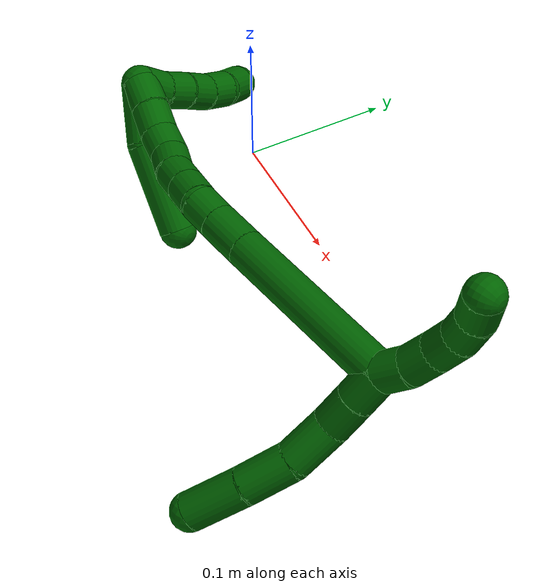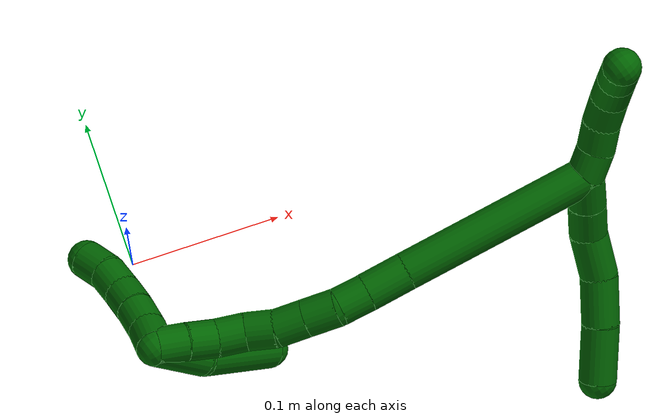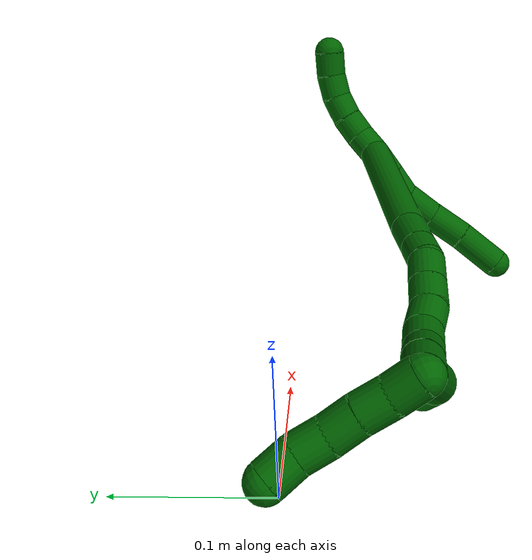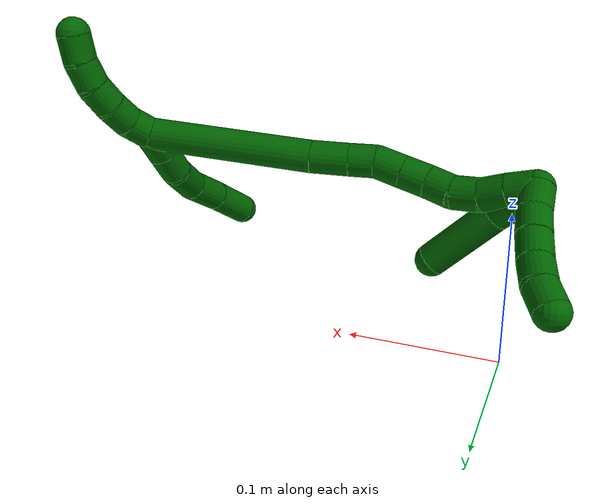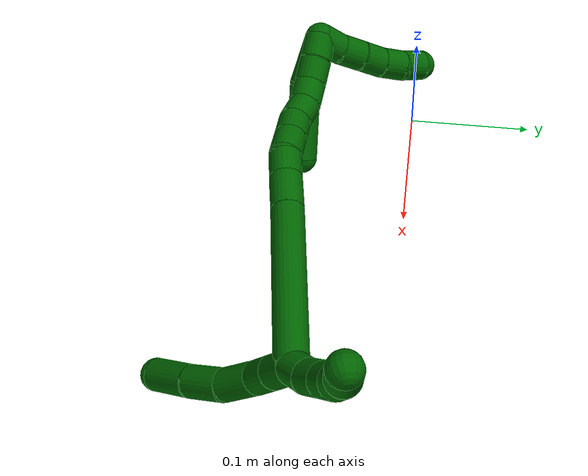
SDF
<sdf version="1.7">
 <world name="default">
  <model name="6">
   <static>0</static>
   <link name="6">
    <collision name="collision-cylinder-e_1_2_8">
     <pose>0.010128 0.003137 -0.004046 -2.48201 1.10277 -2.12586</pose>
     <geometry><cylinder><radius>0.0125</radius><length>0.022696</length></cylinder></geometry>
     <surface>
      <friction><ode><mu>1.16</mu><mu2>1.16</mu2><slip1>0</slip1><slip2>0</slip2></ode></friction>
      <contact><ode><kp>1e+06</kp><kd>1</kd><max_vel>0</max_vel><min_depth>0.001</min_depth></ode></contact>
     </surface>
    </collision>
    <visual name="visual-cylinder-e_1_2_8">
     <pose>0.010128 0.003137 -0.004046 -2.48201 1.10277 -2.12586</pose>
     <geometry><cylinder><radius>0.0125</radius><length>0.022696</length></cylinder></geometry>
     <material><ambient>0 0.392157 0.003922 1</ambient></material>
    </visual>
    <collision name="collision-cylinder-e_2_8_9">
     <pose>0.030873 0.009774 -0.012559 -2.47704 1.07993 -2.09685</pose>
     <geometry><cylinder><radius>0.0125</radius><length>0.024078</length></cylinder></geometry>
     <surface>
      <friction><ode><mu>1.16</mu><mu2>1.16</mu2><slip1>0</slip1><slip2>0</slip2></ode></friction>
      <contact><ode><kp>1e+06</kp><kd>1</kd><max_vel>0</max_vel><min_depth>0.001</min_depth></ode></contact>
     </surface>
    </collision>
    <visual name="visual-cylinder-e_2_8_9">
     <pose>0.030873 0.009774 -0.012559 -2.47704 1.07993 -2.09685</pose>
     <geometry><cylinder><radius>0.0125</radius><length>0.024078</length></cylinder></geometry>
     <material><ambient>0 0.392157 0.003922 1</ambient></material>
    </visual>
    <collision name="collision-cylinder-e_3_9_10">
     <pose>0.056366 0.013164 -0.021844 3.11879 1.25747 3.11024</pose>
     <geometry><cylinder><radius>0.0125</radius><length>0.031273</length></cylinder></geometry>
     <surface>
      <friction><ode><mu>1.16</mu><mu2>1.16</mu2><slip1>0</slip1><slip2>0</slip2></ode></friction>
      <contact><ode><kp>1e+06</kp><kd>1</kd><max_vel>0</max_vel><min_depth>0.001</min_depth></ode></contact>
     </surface>
    </collision>
    <visual name="visual-cylinder-e_3_9_10">
     <pose>0.056366 0.013164 -0.021844 3.11879 1.25747 3.11024</pose>
     <geometry><cylinder><radius>0.0125</radius><length>0.031273</length></cylinder></geometry>
     <material><ambient>0 0.392157 0.003922 1</ambient></material>
    </visual>
    <collision name="collision-cylinder-e_4_10_11">
     <pose>0.085273 0.011601 -0.035242 2.97383 1.01573 2.84172</pose>
     <geometry><cylinder><radius>0.0125</radius><length>0.033021</length></cylinder></geometry>
     <surface>
      <friction><ode><mu>1.16</mu><mu2>1.16</mu2><slip1>0</slip1><slip2>0</slip2></ode></friction>
      <contact><ode><kp>1e+06</kp><kd>1</kd><max_vel>0</max_vel><min_depth>0.001</min_depth></ode></contact>
     </surface>
    </collision>
    <visual name="visual-cylinder-e_4_10_11">
     <pose>0.085273 0.011601 -0.035242 2.97383 1.01573 2.84172</pose>
     <geometry><cylinder><radius>0.0125</radius><length>0.033021</length></cylinder></geometry>
     <material><ambient>0 0.392157 0.003922 1</ambient></material>
    </visual>
    <collision name="collision-cylinder-e_5_11_6">
     <pose>0.115229 0.009685 -0.055006 3.10023 0.958082 3.06198</pose>
     <geometry><cylinder><radius>0.0125</radius><length>0.038931</length></cylinder></geometry>
     <surface>
      <friction><ode><mu>1.16</mu><mu2>1.16</mu2><slip1>0</slip1><slip2>0</slip2></ode></friction>
      <contact><ode><kp>1e+06</kp><kd>1</kd><max_vel>0</max_vel><min_depth>0.001</min_depth></ode></contact>
     </surface>
    </collision>
    <visual name="visual-cylinder-e_5_11_6">
     <pose>0.115229 0.009685 -0.055006 3.10023 0.958082 3.06198</pose>
     <geometry><cylinder><radius>0.0125</radius><length>0.038931</length></cylinder></geometry>
     <material><ambient>0 0.392157 0.003922 1</ambient></material>
    </visual>
    <collision name="collision-cylinder-e_1_2_12">
     <pose>-0.006348 -0.001253 0.007624 0.162828 -0.687795 -0.058426</pose>
     <geometry><cylinder><radius>0.0125</radius><length>0.02</length></cylinder></geometry>
     <surface>
      <friction><ode><mu>1.16</mu><mu2>1.16</mu2><slip1>0</slip1><slip2>0</slip2></ode></friction>
      <contact><ode><kp>1e+06</kp><kd>1</kd><max_vel>0</max_vel><min_depth>0.001</min_depth></ode></contact>
     </surface>
    </collision>
    <visual name="visual-cylinder-e_1_2_12">
     <pose>-0.006348 -0.001253 0.007624 0.162828 -0.687795 -0.058426</pose>
     <geometry><cylinder><radius>0.0125</radius><length>0.02</length></cylinder></geometry>
     <material><ambient>0 0.392157 0.003922 1</ambient></material>
    </visual>
    <collision name="collision-cylinder-e_2_12_13">
     <pose>-0.020416 -0.004894 0.02114 0.385231 -0.881806 -0.183549</pose>
     <geometry><cylinder><radius>0.0125</radius><length>0.02</length></cylinder></geometry>
     <surface>
      <friction><ode><mu>1.16</mu><mu2>1.16</mu2><slip1>0</slip1><slip2>0</slip2></ode></friction>
      <contact><ode><kp>1e+06</kp><kd>1</kd><max_vel>0</max_vel><min_depth>0.001</min_depth></ode></contact>
     </surface>
    </collision>
    <visual name="visual-cylinder-e_2_12_13">
     <pose>-0.020416 -0.004894 0.02114 0.385231 -0.881806 -0.183549</pose>
     <geometry><cylinder><radius>0.0125</radius><length>0.02</length></cylinder></geometry>
     <material><ambient>0 0.392157 0.003922 1</ambient></material>
    </visual>
    <collision name="collision-cylinder-e_3_13_14">
     <pose>-0.035309 -0.011155 0.032822 0.589455 -0.800163 -0.255355</pose>
     <geometry><cylinder><radius>0.0125</radius><length>0.02</length></cylinder></geometry>
     <surface>
      <friction><ode><mu>1.16</mu><mu2>1.16</mu2><slip1>0</slip1><slip2>0</slip2></ode></friction>
      <contact><ode><kp>1e+06</kp><kd>1</kd><max_vel>0</max_vel><min_depth>0.001</min_depth></ode></contact>
     </surface>
    </collision>
    <visual name="visual-cylinder-e_3_13_14">
     <pose>-0.035309 -0.011155 0.032822 0.589455 -0.800163 -0.255355</pose>
     <geometry><cylinder><radius>0.0125</radius><length>0.02</length></cylinder></geometry>
     <material><ambient>0 0.392157 0.003922 1</ambient></material>
    </visual>
    <collision name="collision-cylinder-e_4_14_15">
     <pose>-0.049333 -0.020968 0.042832 0.953142 -0.754499 -0.403546</pose>
     <geometry><cylinder><radius>0.0125</radius><length>0.02</length></cylinder></geometry>
     <surface>
      <friction><ode><mu>1.16</mu><mu2>1.16</mu2><slip1>0</slip1><slip2>0</slip2></ode></friction>
      <contact><ode><kp>1e+06</kp><kd>1</kd><max_vel>0</max_vel><min_depth>0.001</min_depth></ode></contact>
     </surface>
    </collision>
    <visual name="visual-cylinder-e_4_14_15">
     <pose>-0.049333 -0.020968 0.042832 0.953142 -0.754499 -0.403546</pose>
     <geometry><cylinder><radius>0.0125</radius><length>0.02</length></cylinder></geometry>
     <material><ambient>0 0.392157 0.003922 1</ambient></material>
    </visual>
    <collision name="collision-cylinder-e_5_15_5">
     <pose>-0.062483 -0.034276 0.049504 1.24955 -0.681628 -0.500778</pose>
     <geometry><cylinder><radius>0.0125</radius><length>0.02</length></cylinder></geometry>
     <surface>
      <friction><ode><mu>1.16</mu><mu2>1.16</mu2><slip1>0</slip1><slip2>0</slip2></ode></friction>
      <contact><ode><kp>1e+06</kp><kd>1</kd><max_vel>0</max_vel><min_depth>0.001</min_depth></ode></contact>
     </surface>
    </collision>
    <visual name="visual-cylinder-e_5_15_5">
     <pose>-0.062483 -0.034276 0.049504 1.24955 -0.681628 -0.500778</pose>
     <geometry><cylinder><radius>0.0125</radius><length>0.02</length></cylinder></geometry>
     <material><ambient>0 0.392157 0.003922 1</ambient></material>
    </visual>
    <collision name="collision-cylinder-e_1_2_16">
     <pose>-0.008216 0.005966 -0.063696 -3.0482 -0.127727 1.87944</pose>
     <geometry><cylinder><radius>0.0125</radius><length>0.129</length></cylinder></geometry>
     <surface>
      <friction><ode><mu>1.16</mu><mu2>1.16</mu2><slip1>0</slip1><slip2>0</slip2></ode></friction>
      <contact><ode><kp>1e+06</kp><kd>1</kd><max_vel>0</max_vel><min_depth>0.001</min_depth></ode></contact>
     </surface>
    </collision>
    <visual name="visual-cylinder-e_1_2_16">
     <pose>-0.008216 0.005966 -0.063696 -3.0482 -0.127727 1.87944</pose>
     <geometry><cylinder><radius>0.0125</radius><length>0.129</length></cylinder></geometry>
     <material><ambient>0 0.392157 0.003922 1</ambient></material>
    </visual>
    <collision name="collision-cylinder-e_2_16_17">
     <pose>-0.018552 0.01246 -0.141553 -3.10438 -0.148477 2.6512</pose>
     <geometry><cylinder><radius>0.0125</radius><length>0.028657</length></cylinder></geometry>
     <surface>
      <friction><ode><mu>1.16</mu><mu2>1.16</mu2><slip1>0</slip1><slip2>0</slip2></ode></friction>
      <contact><ode><kp>1e+06</kp><kd>1</kd><max_vel>0</max_vel><min_depth>0.001</min_depth></ode></contact>
     </surface>
    </collision>
    <visual name="visual-cylinder-e_2_16_17">
     <pose>-0.018552 0.01246 -0.141553 -3.10438 -0.148477 2.6512</pose>
     <geometry><cylinder><radius>0.0125</radius><length>0.028657</length></cylinder></geometry>
     <material><ambient>0 0.392157 0.003922 1</ambient></material>
    </visual>
    <collision name="collision-cylinder-e_3_17_18">
     <pose>-0.022472 0.013298 -0.165654 -3.11033 -0.179122 2.79687</pose>
     <geometry><cylinder><radius>0.0125</radius><length>0.020214</length></cylinder></geometry>
     <surface>
      <friction><ode><mu>1.16</mu><mu2>1.16</mu2><slip1>0</slip1><slip2>0</slip2></ode></friction>
      <contact><ode><kp>1e+06</kp><kd>1</kd><max_vel>0</max_vel><min_depth>0.001</min_depth></ode></contact>
     </surface>
    </collision>
    <visual name="visual-cylinder-e_3_17_18">
     <pose>-0.022472 0.013298 -0.165654 -3.11033 -0.179122 2.79687</pose>
     <geometry><cylinder><radius>0.0125</radius><length>0.020214</length></cylinder></geometry>
     <material><ambient>0 0.392157 0.003922 1</ambient></material>
    </visual>
    <collision name="collision-cylinder-e_4_18_19">
     <pose>-0.025964 0.017362 -0.185571 -2.78176 -0.157318 0.817878</pose>
     <geometry><cylinder><radius>0.0125</radius><length>0.021586</length></cylinder></geometry>
     <surface>
      <friction><ode><mu>1.16</mu><mu2>1.16</mu2><slip1>0</slip1><slip2>0</slip2></ode></friction>
      <contact><ode><kp>1e+06</kp><kd>1</kd><max_vel>0</max_vel><min_depth>0.001</min_depth></ode></contact>
     </surface>
    </collision>
    <visual name="visual-cylinder-e_4_18_19">
     <pose>-0.025964 0.017362 -0.185571 -2.78176 -0.157318 0.817878</pose>
     <geometry><cylinder><radius>0.0125</radius><length>0.021586</length></cylinder></geometry>
     <material><ambient>0 0.392157 0.003922 1</ambient></material>
    </visual>
    <collision name="collision-cylinder-e_5_19_20">
     <pose>-0.029217 0.024548 -0.204919 -2.79047 -0.155346 0.826918</pose>
     <geometry><cylinder><radius>0.0125</radius><length>0.020202</length></cylinder></geometry>
     <surface>
      <friction><ode><mu>1.16</mu><mu2>1.16</mu2><slip1>0</slip1><slip2>0</slip2></ode></friction>
      <contact><ode><kp>1e+06</kp><kd>1</kd><max_vel>0</max_vel><min_depth>0.001</min_depth></ode></contact>
     </surface>
    </collision>
    <visual name="visual-cylinder-e_5_19_20">
     <pose>-0.029217 0.024548 -0.204919 -2.79047 -0.155346 0.826918</pose>
     <geometry><cylinder><radius>0.0125</radius><length>0.020202</length></cylinder></geometry>
     <material><ambient>0 0.392157 0.003922 1</ambient></material>
    </visual>
    <collision name="collision-cylinder-e_6_20_21">
     <pose>-0.034155 0.032381 -0.222669 -2.65809 -0.342519 1.22336</pose>
     <geometry><cylinder><radius>0.0125</radius><length>0.020097</length></cylinder></geometry>
     <surface>
      <friction><ode><mu>1.16</mu><mu2>1.16</mu2><slip1>0</slip1><slip2>0</slip2></ode></friction>
      <contact><ode><kp>1e+06</kp><kd>1</kd><max_vel>0</max_vel><min_depth>0.001</min_depth></ode></contact>
     </surface>
    </collision>
    <visual name="visual-cylinder-e_6_20_21">
     <pose>-0.034155 0.032381 -0.222669 -2.65809 -0.342519 1.22336</pose>
     <geometry><cylinder><radius>0.0125</radius><length>0.020097</length></cylinder></geometry>
     <material><ambient>0 0.392157 0.003922 1</ambient></material>
    </visual>
    <collision name="collision-cylinder-e_7_21_22">
     <pose>-0.041489 0.038231 -0.240168 -2.98385 -0.405029 2.40672</pose>
     <geometry><cylinder><radius>0.0125</radius><length>0.020092</length></cylinder></geometry>
     <surface>
      <friction><ode><mu>1.16</mu><mu2>1.16</mu2><slip1>0</slip1><slip2>0</slip2></ode></friction>
      <contact><ode><kp>1e+06</kp><kd>1</kd><max_vel>0</max_vel><min_depth>0.001</min_depth></ode></contact>
     </surface>
    </collision>
    <visual name="visual-cylinder-e_7_21_22">
     <pose>-0.041489 0.038231 -0.240168 -2.98385 -0.405029 2.40672</pose>
     <geometry><cylinder><radius>0.0125</radius><length>0.020092</length></cylinder></geometry>
     <material><ambient>0 0.392157 0.003922 1</ambient></material>
    </visual>
    <collision name="collision-cylinder-e_8_22_23">
     <pose>-0.05113 0.039093 -0.25756 3.07053 -0.600691 -2.91304</pose>
     <geometry><cylinder><radius>0.0125</radius><length>0.020108</length></cylinder></geometry>
     <surface>
      <friction><ode><mu>1.16</mu><mu2>1.16</mu2><slip1>0</slip1><slip2>0</slip2></ode></friction>
      <contact><ode><kp>1e+06</kp><kd>1</kd><max_vel>0</max_vel><min_depth>0.001</min_depth></ode></contact>
     </surface>
    </collision>
    <visual name="visual-cylinder-e_8_22_23">
     <pose>-0.05113 0.039093 -0.25756 3.07053 -0.600691 -2.91304</pose>
     <geometry><cylinder><radius>0.0125</radius><length>0.020108</length></cylinder></geometry>
     <material><ambient>0 0.392157 0.003922 1</ambient></material>
    </visual>
    <collision name="collision-cylinder-e_9_23_1">
     <pose>-0.061922 0.038336 -0.274453 3.12214 -0.534976 -3.07062</pose>
     <geometry><cylinder><radius>0.0125</radius><length>0.020044</length></cylinder></geometry>
     <surface>
      <friction><ode><mu>1.16</mu><mu2>1.16</mu2><slip1>0</slip1><slip2>0</slip2></ode></friction>
      <contact><ode><kp>1e+06</kp><kd>1</kd><max_vel>0</max_vel><min_depth>0.001</min_depth></ode></contact>
     </surface>
    </collision>
    <visual name="visual-cylinder-e_9_23_1">
     <pose>-0.061922 0.038336 -0.274453 3.12214 -0.534976 -3.07062</pose>
     <geometry><cylinder><radius>0.0125</radius><length>0.020044</length></cylinder></geometry>
     <material><ambient>0 0.392157 0.003922 1</ambient></material>
    </visual>
    <collision name="collision-cylinder-e_1_1_24">
     <pose>-0.068826 0.047896 -0.281604 -1.42099 -0.18043 0.15535</pose>
     <geometry><cylinder><radius>0.0125</radius><length>0.02</length></cylinder></geometry>
     <surface>
      <friction><ode><mu>1.16</mu><mu2>1.16</mu2><slip1>0</slip1><slip2>0</slip2></ode></friction>
      <contact><ode><kp>1e+06</kp><kd>1</kd><max_vel>0</max_vel><min_depth>0.001</min_depth></ode></contact>
     </surface>
    </collision>
    <visual name="visual-cylinder-e_1_1_24">
     <pose>-0.068826 0.047896 -0.281604 -1.42099 -0.18043 0.15535</pose>
     <geometry><cylinder><radius>0.0125</radius><length>0.02</length></cylinder></geometry>
     <material><ambient>0 0.392157 0.003922 1</ambient></material>
    </visual>
    <collision name="collision-cylinder-e_2_24_25">
     <pose>-0.074044 0.066983 -0.279314 -1.48313 -0.349436 0.320593</pose>
     <geometry><cylinder><radius>0.0125</radius><length>0.02</length></cylinder></geometry>
     <surface>
      <friction><ode><mu>1.16</mu><mu2>1.16</mu2><slip1>0</slip1><slip2>0</slip2></ode></friction>
      <contact><ode><kp>1e+06</kp><kd>1</kd><max_vel>0</max_vel><min_depth>0.001</min_depth></ode></contact>
     </surface>
    </collision>
    <visual name="visual-cylinder-e_2_24_25">
     <pose>-0.074044 0.066983 -0.279314 -1.48313 -0.349436 0.320593</pose>
     <geometry><cylinder><radius>0.0125</radius><length>0.02</length></cylinder></geometry>
     <material><ambient>0 0.392157 0.003922 1</ambient></material>
    </visual>
    <collision name="collision-cylinder-e_3_25_26">
     <pose>-0.080311 0.085929 -0.278354 -1.55651 -0.288311 0.284275</pose>
     <geometry><cylinder><radius>0.0125</radius><length>0.02</length></cylinder></geometry>
     <surface>
      <friction><ode><mu>1.16</mu><mu2>1.16</mu2><slip1>0</slip1><slip2>0</slip2></ode></friction>
      <contact><ode><kp>1e+06</kp><kd>1</kd><max_vel>0</max_vel><min_depth>0.001</min_depth></ode></contact>
     </surface>
    </collision>
    <visual name="visual-cylinder-e_3_25_26">
     <pose>-0.080311 0.085929 -0.278354 -1.55651 -0.288311 0.284275</pose>
     <geometry><cylinder><radius>0.0125</radius><length>0.02</length></cylinder></geometry>
     <material><ambient>0 0.392157 0.003922 1</ambient></material>
    </visual>
    <collision name="collision-cylinder-e_4_26_27">
     <pose>-0.087495 0.104522 -0.278427 -1.59413 -0.448966 0.4592</pose>
     <geometry><cylinder><radius>0.0125</radius><length>0.02</length></cylinder></geometry>
     <surface>
      <friction><ode><mu>1.16</mu><mu2>1.16</mu2><slip1>0</slip1><slip2>0</slip2></ode></friction>
      <contact><ode><kp>1e+06</kp><kd>1</kd><max_vel>0</max_vel><min_depth>0.001</min_depth></ode></contact>
     </surface>
    </collision>
    <visual name="visual-cylinder-e_4_26_27">
     <pose>-0.087495 0.104522 -0.278427 -1.59413 -0.448966 0.4592</pose>
     <geometry><cylinder><radius>0.0125</radius><length>0.02</length></cylinder></geometry>
     <material><ambient>0 0.392157 0.003922 1</ambient></material>
    </visual>
    <collision name="collision-cylinder-e_5_27_4">
     <pose>-0.095805 0.122332 -0.281234 -1.85758 -0.408208 0.540155</pose>
     <geometry><cylinder><radius>0.0125</radius><length>0.02</length></cylinder></geometry>
     <surface>
      <friction><ode><mu>1.16</mu><mu2>1.16</mu2><slip1>0</slip1><slip2>0</slip2></ode></friction>
      <contact><ode><kp>1e+06</kp><kd>1</kd><max_vel>0</max_vel><min_depth>0.001</min_depth></ode></contact>
     </surface>
    </collision>
    <visual name="visual-cylinder-e_5_27_4">
     <pose>-0.095805 0.122332 -0.281234 -1.85758 -0.408208 0.540155</pose>
     <geometry><cylinder><radius>0.0125</radius><length>0.02</length></cylinder></geometry>
     <material><ambient>0 0.392157 0.003922 1</ambient></material>
    </visual>
    <collision name="collision-cylinder-e_1_1_28">
     <pose>-0.051072 0.043499 -0.272708 -0.475035 0.940031 -0.244725</pose>
     <geometry><cylinder><radius>0.0125</radius><length>0.039525</length></cylinder></geometry>
     <surface>
      <friction><ode><mu>1.16</mu><mu2>1.16</mu2><slip1>0</slip1><slip2>0</slip2></ode></friction>
      <contact><ode><kp>1e+06</kp><kd>1</kd><max_vel>0</max_vel><min_depth>0.001</min_depth></ode></contact>
     </surface>
    </collision>
    <visual name="visual-cylinder-e_1_1_28">
     <pose>-0.051072 0.043499 -0.272708 -0.475035 0.940031 -0.244725</pose>
     <geometry><cylinder><radius>0.0125</radius><length>0.039525</length></cylinder></geometry>
     <material><ambient>0 0.392157 0.003922 1</ambient></material>
    </visual>
    <collision name="collision-cylinder-e_2_28_3">
     <pose>-0.015856 0.062462 -0.243431 -0.624537 0.690378 -0.231136</pose>
     <geometry><cylinder><radius>0.0125</radius><length>0.060475</length></cylinder></geometry>
     <surface>
      <friction><ode><mu>1.16</mu><mu2>1.16</mu2><slip1>0</slip1><slip2>0</slip2></ode></friction>
      <contact><ode><kp>1e+06</kp><kd>1</kd><max_vel>0</max_vel><min_depth>0.001</min_depth></ode></contact>
     </surface>
    </collision>
    <visual name="visual-cylinder-e_2_28_3">
     <pose>-0.015856 0.062462 -0.243431 -0.624537 0.690378 -0.231136</pose>
     <geometry><cylinder><radius>0.0125</radius><length>0.060475</length></cylinder></geometry>
     <material><ambient>0 0.392157 0.003922 1</ambient></material>
    </visual>
    <collision name="collision-sphere-3">
     <pose>0.0034 0.076093 -0.224518 0 -0 0</pose>
     <geometry><sphere><radius>0.0125</radius></sphere></geometry>
     <surface>
      <friction><ode><mu>1.16</mu><mu2>1.16</mu2><slip1>0</slip1><slip2>0</slip2></ode></friction>
      <contact><ode><kp>1e+06</kp><kd>1</kd><max_vel>0</max_vel><min_depth>0.001</min_depth></ode></contact>
     </surface>
    </collision>
    <visual name="visual-sphere-3">
     <pose>0.0034 0.076093 -0.224518 0 -0 0</pose>
     <geometry><sphere><radius>0.0125</radius></sphere></geometry>
     <material><ambient>0 0.392157 0.003922 1</ambient></material>
    </visual>
    <collision name="collision-sphere-28">
     <pose>-0.035112 0.04883 -0.262343 0 -0 0</pose>
     <geometry><sphere><radius>0.0125</radius></sphere></geometry>
     <surface>
      <friction><ode><mu>1.16</mu><mu2>1.16</mu2><slip1>0</slip1><slip2>0</slip2></ode></friction>
      <contact><ode><kp>1e+06</kp><kd>1</kd><max_vel>0</max_vel><min_depth>0.001</min_depth></ode></contact>
     </surface>
    </collision>
    <visual name="visual-sphere-28">
     <pose>-0.035112 0.04883 -0.262343 0 -0 0</pose>
     <geometry><sphere><radius>0.0125</radius></sphere></geometry>
     <material><ambient>0 0.392157 0.003922 1</ambient></material>
    </visual>
    <collision name="collision-sphere-4">
     <pose>-0.099775 0.131135 -0.28383 0 -0 0</pose>
     <geometry><sphere><radius>0.0125</radius></sphere></geometry>
     <surface>
      <friction><ode><mu>1.16</mu><mu2>1.16</mu2><slip1>0</slip1><slip2>0</slip2></ode></friction>
      <contact><ode><kp>1e+06</kp><kd>1</kd><max_vel>0</max_vel><min_depth>0.001</min_depth></ode></contact>
     </surface>
    </collision>
    <visual name="visual-sphere-4">
     <pose>-0.099775 0.131135 -0.28383 0 -0 0</pose>
     <geometry><sphere><radius>0.0125</radius></sphere></geometry>
     <material><ambient>0 0.392157 0.003922 1</ambient></material>
    </visual>
    <collision name="collision-sphere-27">
     <pose>-0.091835 0.113528 -0.278637 0 -0 0</pose>
     <geometry><sphere><radius>0.0125</radius></sphere></geometry>
     <surface>
      <friction><ode><mu>1.16</mu><mu2>1.16</mu2><slip1>0</slip1><slip2>0</slip2></ode></friction>
      <contact><ode><kp>1e+06</kp><kd>1</kd><max_vel>0</max_vel><min_depth>0.001</min_depth></ode></contact>
     </surface>
    </collision>
    <visual name="visual-sphere-27">
     <pose>-0.091835 0.113528 -0.278637 0 -0 0</pose>
     <geometry><sphere><radius>0.0125</radius></sphere></geometry>
     <material><ambient>0 0.392157 0.003922 1</ambient></material>
    </visual>
    <collision name="collision-sphere-26">
     <pose>-0.083155 0.095515 -0.278217 0 -0 0</pose>
     <geometry><sphere><radius>0.0125</radius></sphere></geometry>
     <surface>
      <friction><ode><mu>1.16</mu><mu2>1.16</mu2><slip1>0</slip1><slip2>0</slip2></ode></friction>
      <contact><ode><kp>1e+06</kp><kd>1</kd><max_vel>0</max_vel><min_depth>0.001</min_depth></ode></contact>
     </surface>
    </collision>
    <visual name="visual-sphere-26">
     <pose>-0.083155 0.095515 -0.278217 0 -0 0</pose>
     <geometry><sphere><radius>0.0125</radius></sphere></geometry>
     <material><ambient>0 0.392157 0.003922 1</ambient></material>
    </visual>
    <collision name="collision-sphere-25">
     <pose>-0.077468 0.076343 -0.278491 0 -0 0</pose>
     <geometry><sphere><radius>0.0125</radius></sphere></geometry>
     <surface>
      <friction><ode><mu>1.16</mu><mu2>1.16</mu2><slip1>0</slip1><slip2>0</slip2></ode></friction>
      <contact><ode><kp>1e+06</kp><kd>1</kd><max_vel>0</max_vel><min_depth>0.001</min_depth></ode></contact>
     </surface>
    </collision>
    <visual name="visual-sphere-25">
     <pose>-0.077468 0.076343 -0.278491 0 -0 0</pose>
     <geometry><sphere><radius>0.0125</radius></sphere></geometry>
     <material><ambient>0 0.392157 0.003922 1</ambient></material>
    </visual>
    <collision name="collision-sphere-24">
     <pose>-0.070621 0.057623 -0.280136 0 -0 0</pose>
     <geometry><sphere><radius>0.0125</radius></sphere></geometry>
     <surface>
      <friction><ode><mu>1.16</mu><mu2>1.16</mu2><slip1>0</slip1><slip2>0</slip2></ode></friction>
      <contact><ode><kp>1e+06</kp><kd>1</kd><max_vel>0</max_vel><min_depth>0.001</min_depth></ode></contact>
     </surface>
    </collision>
    <visual name="visual-sphere-24">
     <pose>-0.070621 0.057623 -0.280136 0 -0 0</pose>
     <geometry><sphere><radius>0.0125</radius></sphere></geometry>
     <material><ambient>0 0.392157 0.003922 1</ambient></material>
    </visual>
    <collision name="collision-sphere-1">
     <pose>-0.067031 0.038168 -0.283073 0 -0 0</pose>
     <geometry><sphere><radius>0.0125</radius></sphere></geometry>
     <surface>
      <friction><ode><mu>1.16</mu><mu2>1.16</mu2><slip1>0</slip1><slip2>0</slip2></ode></friction>
      <contact><ode><kp>1e+06</kp><kd>1</kd><max_vel>0</max_vel><min_depth>0.001</min_depth></ode></contact>
     </surface>
    </collision>
    <visual name="visual-sphere-1">
     <pose>-0.067031 0.038168 -0.283073 0 -0 0</pose>
     <geometry><sphere><radius>0.0125</radius></sphere></geometry>
     <material><ambient>0 0.392157 0.003922 1</ambient></material>
    </visual>
    <collision name="collision-sphere-23">
     <pose>-0.056813 0.038504 -0.265833 0 -0 0</pose>
     <geometry><sphere><radius>0.0125</radius></sphere></geometry>
     <surface>
      <friction><ode><mu>1.16</mu><mu2>1.16</mu2><slip1>0</slip1><slip2>0</slip2></ode></friction>
      <contact><ode><kp>1e+06</kp><kd>1</kd><max_vel>0</max_vel><min_depth>0.001</min_depth></ode></contact>
     </surface>
    </collision>
    <visual name="visual-sphere-23">
     <pose>-0.056813 0.038504 -0.265833 0 -0 0</pose>
     <geometry><sphere><radius>0.0125</radius></sphere></geometry>
     <material><ambient>0 0.392157 0.003922 1</ambient></material>
    </visual>
    <collision name="collision-sphere-22">
     <pose>-0.045447 0.039682 -0.249286 0 -0 0</pose>
     <geometry><sphere><radius>0.0125</radius></sphere></geometry>
     <surface>
      <friction><ode><mu>1.16</mu><mu2>1.16</mu2><slip1>0</slip1><slip2>0</slip2></ode></friction>
      <contact><ode><kp>1e+06</kp><kd>1</kd><max_vel>0</max_vel><min_depth>0.001</min_depth></ode></contact>
     </surface>
    </collision>
    <visual name="visual-sphere-22">
     <pose>-0.045447 0.039682 -0.249286 0 -0 0</pose>
     <geometry><sphere><radius>0.0125</radius></sphere></geometry>
     <material><ambient>0 0.392157 0.003922 1</ambient></material>
    </visual>
    <collision name="collision-sphere-21">
     <pose>-0.03753 0.036781 -0.231049 0 -0 0</pose>
     <geometry><sphere><radius>0.0125</radius></sphere></geometry>
     <surface>
      <friction><ode><mu>1.16</mu><mu2>1.16</mu2><slip1>0</slip1><slip2>0</slip2></ode></friction>
      <contact><ode><kp>1e+06</kp><kd>1</kd><max_vel>0</max_vel><min_depth>0.001</min_depth></ode></contact>
     </surface>
    </collision>
    <visual name="visual-sphere-21">
     <pose>-0.03753 0.036781 -0.231049 0 -0 0</pose>
     <geometry><sphere><radius>0.0125</radius></sphere></geometry>
     <material><ambient>0 0.392157 0.003922 1</ambient></material>
    </visual>
    <collision name="collision-sphere-6">
     <pose>0.131154 0.009223 -0.066191 0 -0 0</pose>
     <geometry><sphere><radius>0.0125</radius></sphere></geometry>
     <surface>
      <friction><ode><mu>1.16</mu><mu2>1.16</mu2><slip1>0</slip1><slip2>0</slip2></ode></friction>
      <contact><ode><kp>1e+06</kp><kd>1</kd><max_vel>0</max_vel><min_depth>0.001</min_depth></ode></contact>
     </surface>
    </collision>
    <visual name="visual-sphere-6">
     <pose>0.131154 0.009223 -0.066191 0 -0 0</pose>
     <geometry><sphere><radius>0.0125</radius></sphere></geometry>
     <material><ambient>0 0.392157 0.003922 1</ambient></material>
    </visual>
    <collision name="collision-sphere-11">
     <pose>0.099305 0.010148 -0.043821 0 -0 0</pose>
     <geometry><sphere><radius>0.0125</radius></sphere></geometry>
     <surface>
      <friction><ode><mu>1.16</mu><mu2>1.16</mu2><slip1>0</slip1><slip2>0</slip2></ode></friction>
      <contact><ode><kp>1e+06</kp><kd>1</kd><max_vel>0</max_vel><min_depth>0.001</min_depth></ode></contact>
     </surface>
    </collision>
    <visual name="visual-sphere-11">
     <pose>0.099305 0.010148 -0.043821 0 -0 0</pose>
     <geometry><sphere><radius>0.0125</radius></sphere></geometry>
     <material><ambient>0 0.392157 0.003922 1</ambient></material>
    </visual>
    <collision name="collision-sphere-10">
     <pose>0.071241 0.013054 -0.026663 0 -0 0</pose>
     <geometry><sphere><radius>0.0125</radius></sphere></geometry>
     <surface>
      <friction><ode><mu>1.16</mu><mu2>1.16</mu2><slip1>0</slip1><slip2>0</slip2></ode></friction>
      <contact><ode><kp>1e+06</kp><kd>1</kd><max_vel>0</max_vel><min_depth>0.001</min_depth></ode></contact>
     </surface>
    </collision>
    <visual name="visual-sphere-10">
     <pose>0.071241 0.013054 -0.026663 0 -0 0</pose>
     <geometry><sphere><radius>0.0125</radius></sphere></geometry>
     <material><ambient>0 0.392157 0.003922 1</ambient></material>
    </visual>
    <collision name="collision-sphere-9">
     <pose>0.04149 0.013274 -0.017026 0 -0 0</pose>
     <geometry><sphere><radius>0.0125</radius></sphere></geometry>
     <surface>
      <friction><ode><mu>1.16</mu><mu2>1.16</mu2><slip1>0</slip1><slip2>0</slip2></ode></friction>
      <contact><ode><kp>1e+06</kp><kd>1</kd><max_vel>0</max_vel><min_depth>0.001</min_depth></ode></contact>
     </surface>
    </collision>
    <visual name="visual-sphere-9">
     <pose>0.04149 0.013274 -0.017026 0 -0 0</pose>
     <geometry><sphere><radius>0.0125</radius></sphere></geometry>
     <material><ambient>0 0.392157 0.003922 1</ambient></material>
    </visual>
    <collision name="collision-sphere-2">
     <geometry><sphere><radius>0.0125</radius></sphere></geometry>
     <surface>
      <friction><ode><mu>1.16</mu><mu2>1.16</mu2><slip1>0</slip1><slip2>0</slip2></ode></friction>
      <contact><ode><kp>1e+06</kp><kd>1</kd><max_vel>0</max_vel><min_depth>0.001</min_depth></ode></contact>
     </surface>
    </collision>
    <visual name="visual-sphere-2">
     <geometry><sphere><radius>0.0125</radius></sphere></geometry>
     <material><ambient>0 0.392157 0.003922 1</ambient></material>
    </visual>
    <collision name="collision-sphere-19">
     <pose>-0.027655 0.021116 -0.195548 0 -0 0</pose>
     <geometry><sphere><radius>0.0125</radius></sphere></geometry>
     <surface>
      <friction><ode><mu>1.16</mu><mu2>1.16</mu2><slip1>0</slip1><slip2>0</slip2></ode></friction>
      <contact><ode><kp>1e+06</kp><kd>1</kd><max_vel>0</max_vel><min_depth>0.001</min_depth></ode></contact>
     </surface>
    </collision>
    <visual name="visual-sphere-19">
     <pose>-0.027655 0.021116 -0.195548 0 -0 0</pose>
     <geometry><sphere><radius>0.0125</radius></sphere></geometry>
     <material><ambient>0 0.392157 0.003922 1</ambient></material>
    </visual>
    <collision name="collision-sphere-8">
     <pose>0.020256 0.006274 -0.008091 0 -0 0</pose>
     <geometry><sphere><radius>0.0125</radius></sphere></geometry>
     <surface>
      <friction><ode><mu>1.16</mu><mu2>1.16</mu2><slip1>0</slip1><slip2>0</slip2></ode></friction>
      <contact><ode><kp>1e+06</kp><kd>1</kd><max_vel>0</max_vel><min_depth>0.001</min_depth></ode></contact>
     </surface>
    </collision>
    <visual name="visual-sphere-8">
     <pose>0.020256 0.006274 -0.008091 0 -0 0</pose>
     <geometry><sphere><radius>0.0125</radius></sphere></geometry>
     <material><ambient>0 0.392157 0.003922 1</ambient></material>
    </visual>
    <collision name="collision-sphere-12">
     <pose>-0.012697 -0.002505 0.015249 0 -0 0</pose>
     <geometry><sphere><radius>0.0125</radius></sphere></geometry>
     <surface>
      <friction><ode><mu>1.16</mu><mu2>1.16</mu2><slip1>0</slip1><slip2>0</slip2></ode></friction>
      <contact><ode><kp>1e+06</kp><kd>1</kd><max_vel>0</max_vel><min_depth>0.001</min_depth></ode></contact>
     </surface>
    </collision>
    <visual name="visual-sphere-12">
     <pose>-0.012697 -0.002505 0.015249 0 -0 0</pose>
     <geometry><sphere><radius>0.0125</radius></sphere></geometry>
     <material><ambient>0 0.392157 0.003922 1</ambient></material>
    </visual>
    <collision name="collision-sphere-13">
     <pose>-0.028134 -0.007283 0.027032 0 -0 0</pose>
     <geometry><sphere><radius>0.0125</radius></sphere></geometry>
     <surface>
      <friction><ode><mu>1.16</mu><mu2>1.16</mu2><slip1>0</slip1><slip2>0</slip2></ode></friction>
      <contact><ode><kp>1e+06</kp><kd>1</kd><max_vel>0</max_vel><min_depth>0.001</min_depth></ode></contact>
     </surface>
    </collision>
    <visual name="visual-sphere-13">
     <pose>-0.028134 -0.007283 0.027032 0 -0 0</pose>
     <geometry><sphere><radius>0.0125</radius></sphere></geometry>
     <material><ambient>0 0.392157 0.003922 1</ambient></material>
    </visual>
    <collision name="collision-sphere-14">
     <pose>-0.042484 -0.015028 0.038613 0 -0 0</pose>
     <geometry><sphere><radius>0.0125</radius></sphere></geometry>
     <surface>
      <friction><ode><mu>1.16</mu><mu2>1.16</mu2><slip1>0</slip1><slip2>0</slip2></ode></friction>
      <contact><ode><kp>1e+06</kp><kd>1</kd><max_vel>0</max_vel><min_depth>0.001</min_depth></ode></contact>
     </surface>
    </collision>
    <visual name="visual-sphere-14">
     <pose>-0.042484 -0.015028 0.038613 0 -0 0</pose>
     <geometry><sphere><radius>0.0125</radius></sphere></geometry>
     <material><ambient>0 0.392157 0.003922 1</ambient></material>
    </visual>
    <collision name="collision-sphere-15">
     <pose>-0.056182 -0.026908 0.047052 0 -0 0</pose>
     <geometry><sphere><radius>0.0125</radius></sphere></geometry>
     <surface>
      <friction><ode><mu>1.16</mu><mu2>1.16</mu2><slip1>0</slip1><slip2>0</slip2></ode></friction>
      <contact><ode><kp>1e+06</kp><kd>1</kd><max_vel>0</max_vel><min_depth>0.001</min_depth></ode></contact>
     </surface>
    </collision>
    <visual name="visual-sphere-15">
     <pose>-0.056182 -0.026908 0.047052 0 -0 0</pose>
     <geometry><sphere><radius>0.0125</radius></sphere></geometry>
     <material><ambient>0 0.392157 0.003922 1</ambient></material>
    </visual>
    <collision name="collision-sphere-5">
     <pose>-0.068783 -0.041644 0.051956 0 -0 0</pose>
     <geometry><sphere><radius>0.0125</radius></sphere></geometry>
     <surface>
      <friction><ode><mu>1.16</mu><mu2>1.16</mu2><slip1>0</slip1><slip2>0</slip2></ode></friction>
      <contact><ode><kp>1e+06</kp><kd>1</kd><max_vel>0</max_vel><min_depth>0.001</min_depth></ode></contact>
     </surface>
    </collision>
    <visual name="visual-sphere-5">
     <pose>-0.068783 -0.041644 0.051956 0 -0 0</pose>
     <geometry><sphere><radius>0.0125</radius></sphere></geometry>
     <material><ambient>0 0.392157 0.003922 1</ambient></material>
    </visual>
    <collision name="collision-sphere-16">
     <pose>-0.016432 0.011933 -0.127392 0 -0 0</pose>
     <geometry><sphere><radius>0.0125</radius></sphere></geometry>
     <surface>
      <friction><ode><mu>1.16</mu><mu2>1.16</mu2><slip1>0</slip1><slip2>0</slip2></ode></friction>
      <contact><ode><kp>1e+06</kp><kd>1</kd><max_vel>0</max_vel><min_depth>0.001</min_depth></ode></contact>
     </surface>
    </collision>
    <visual name="visual-sphere-16">
     <pose>-0.016432 0.011933 -0.127392 0 -0 0</pose>
     <geometry><sphere><radius>0.0125</radius></sphere></geometry>
     <material><ambient>0 0.392157 0.003922 1</ambient></material>
    </visual>
    <collision name="collision-sphere-17">
     <pose>-0.020671 0.012987 -0.155714 0 -0 0</pose>
     <geometry><sphere><radius>0.0125</radius></sphere></geometry>
     <surface>
      <friction><ode><mu>1.16</mu><mu2>1.16</mu2><slip1>0</slip1><slip2>0</slip2></ode></friction>
      <contact><ode><kp>1e+06</kp><kd>1</kd><max_vel>0</max_vel><min_depth>0.001</min_depth></ode></contact>
     </surface>
    </collision>
    <visual name="visual-sphere-17">
     <pose>-0.020671 0.012987 -0.155714 0 -0 0</pose>
     <geometry><sphere><radius>0.0125</radius></sphere></geometry>
     <material><ambient>0 0.392157 0.003922 1</ambient></material>
    </visual>
    <collision name="collision-sphere-18">
     <pose>-0.024273 0.013609 -0.175594 0 -0 0</pose>
     <geometry><sphere><radius>0.0125</radius></sphere></geometry>
     <surface>
      <friction><ode><mu>1.16</mu><mu2>1.16</mu2><slip1>0</slip1><slip2>0</slip2></ode></friction>
      <contact><ode><kp>1e+06</kp><kd>1</kd><max_vel>0</max_vel><min_depth>0.001</min_depth></ode></contact>
     </surface>
    </collision>
    <visual name="visual-sphere-18">
     <pose>-0.024273 0.013609 -0.175594 0 -0 0</pose>
     <geometry><sphere><radius>0.0125</radius></sphere></geometry>
     <material><ambient>0 0.392157 0.003922 1</ambient></material>
    </visual>
    <collision name="collision-sphere-20">
     <pose>-0.03078 0.027981 -0.214289 0 -0 0</pose>
     <geometry><sphere><radius>0.0125</radius></sphere></geometry>
     <surface>
      <friction><ode><mu>1.16</mu><mu2>1.16</mu2><slip1>0</slip1><slip2>0</slip2></ode></friction>
      <contact><ode><kp>1e+06</kp><kd>1</kd><max_vel>0</max_vel><min_depth>0.001</min_depth></ode></contact>
     </surface>
    </collision>
    <visual name="visual-sphere-20">
     <pose>-0.03078 0.027981 -0.214289 0 -0 0</pose>
     <geometry><sphere><radius>0.0125</radius></sphere></geometry>
     <material><ambient>0 0.392157 0.003922 1</ambient></material>
    </visual>
    <inertial>
     <pose>-0.015377 0.025756 -0.131374 0 -0 0</pose>
     <mass>0.75</mass>
     <inertia>
      <ixx>0.000141</ixx>
      <ixy>0</ixy>
      <ixz>0</ixz>
      <iyy>0.000299</iyy>
      <iyz>0</iyz>
      <izz>-5.3e-05</izz>
     </inertia>
    </inertial>
   </link>
   <pose>0.286253 -0.063262 0.107099 -1.45359 0.676044 -1.18376</pose>
  </model>
 </world>
</sdf>
